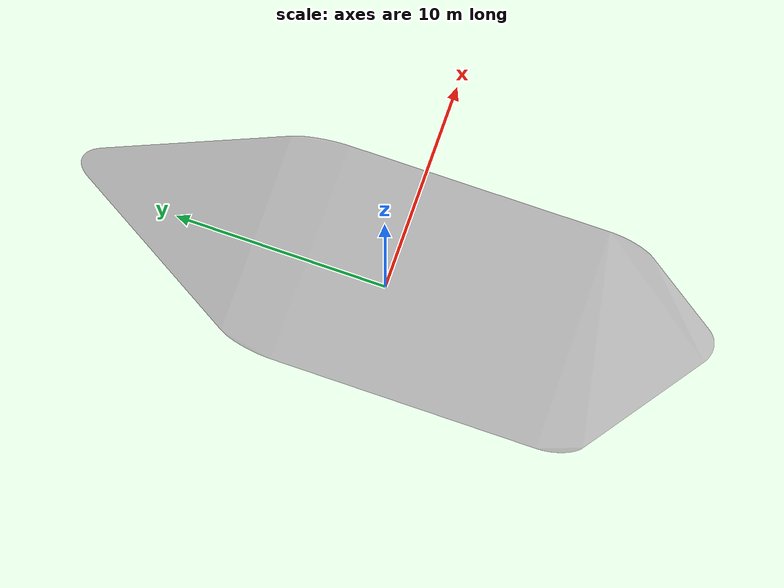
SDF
<?xml version="1.0"?>
<sdf version="1.6">
  <model name="boat1">
    <pose>0 0 0 0 0 0</pose>
    <static>true</static>

    <link name="link">
      <!-- 视觉外观 - 使用DAE文件 -->
      <visual name="visual">
        <geometry>
          <mesh>
            <uri>model://boat1/meshes/boat1.dae</uri>
            <scale>1.0 1.0 1.0</scale>
          </mesh>
        </geometry>
      </visual>

      <!-- 简化的碰撞检测 -->
      <collision name="collision">
        <geometry>
          <box>
            <size>2 2 3</size>
          </box>
        </geometry>
        <pose>0 0 1.5 0 0 0</pose>
      </collision>
    </link>
  </model>
</sdf>
